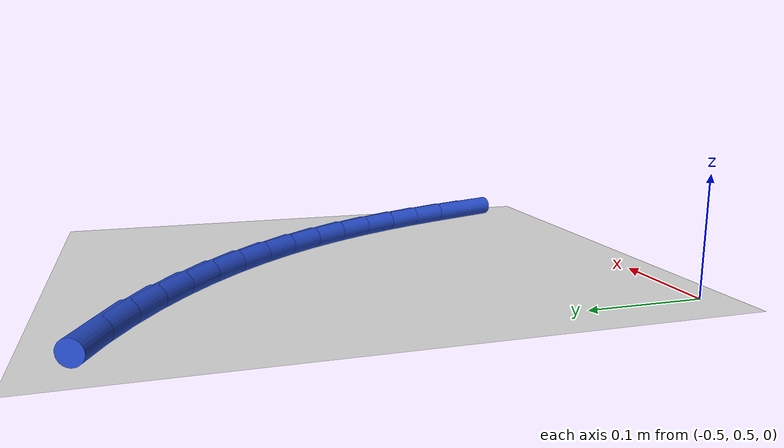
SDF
<sdf version="1.6">
 <world name="default">
  <model name="ground_plane">
   <static>1</static>
   <link name="link">
    <collision name="collision">
     <geometry><plane><normal>0 0 1</normal><size>100 100</size></plane></geometry>
     <surface><friction><ode><mu>100</mu><mu2>50</mu2></ode></friction></surface>
    </collision>
    <visual name="visual">
     <cast_shadows>0</cast_shadows>
     <geometry><plane><normal>0 0 1</normal><size>100 100</size></plane></geometry>
     <material>
      <script><uri>file://media/materials/scripts/gazebo.material</uri><name>Gazebo/WhiteGlow</name></script>
     </material>
    </visual>
   </link>
  </model>
  <model name="line">
   <link name="link_15">
    <pose>-0.12571212579413674 0.558648082354958 0.01 0 1.57 -1.1952963206039646</pose>
    <collision name="collision">
     <geometry><cylinder><radius>0.01</radius><length>0.08</length></cylinder></geometry>
    </collision>
    <visual name="visual">
     <material>
      <script><name>Gazebo/Blue</name><uri>file://media/materials/scripts/gazebo.material</uri></script>
     </material>
     <geometry><cylinder><radius>0.01</radius><length>0.08</length></cylinder></geometry>
    </visual>
   </link>
   <link name="link_16">
    <pose>-0.13972944330540882 0.594206604202918 0.01 0 1.57 -1.1577334255400793</pose>
    <collision name="collision">
     <geometry><cylinder><radius>0.01</radius><length>0.08</length></cylinder></geometry>
    </collision>
    <visual name="visual">
     <material>
      <script><name>Gazebo/Blue</name><uri>file://media/materials/scripts/gazebo.material</uri></script>
     </material>
     <geometry><cylinder><radius>0.01</radius><length>0.08</length></cylinder></geometry>
    </visual>
   </link>
   <link name="link_17">
    <pose>-0.15499986738538307 0.6290485063314891 0.01 0 1.57 -1.1147197260796398</pose>
    <collision name="collision">
     <geometry><cylinder><radius>0.01</radius><length>0.08</length></cylinder></geometry>
    </collision>
    <visual name="visual">
     <material>
      <script><name>Gazebo/Blue</name><uri>file://media/materials/scripts/gazebo.material</uri></script>
     </material>
     <geometry><cylinder><radius>0.01</radius><length>0.08</length></cylinder></geometry>
    </visual>
   </link>
   <link name="link_18">
    <pose>-0.17168430043927685 0.6630586853681615 0.01 0 1.57 -1.0662248075592544</pose>
    <collision name="collision">
     <geometry><cylinder><radius>0.01</radius><length>0.08</length></cylinder></geometry>
    </collision>
    <visual name="visual">
     <material>
      <script><name>Gazebo/Blue</name><uri>file://media/materials/scripts/gazebo.material</uri></script>
     </material>
     <geometry><cylinder><radius>0.01</radius><length>0.08</length></cylinder></geometry>
    </visual>
   </link>
   <link name="link_19">
    <pose>-0.18994364487230728 0.6961220379404246 0.01 0 1.57 -1.0123258024327875</pose>
    <collision name="collision">
     <geometry><cylinder><radius>0.01</radius><length>0.08</length></cylinder></geometry>
    </collision>
    <visual name="visual">
     <material>
      <script><name>Gazebo/Blue</name><uri>file://media/materials/scripts/gazebo.material</uri></script>
     </material>
     <geometry><cylinder><radius>0.01</radius><length>0.08</length></cylinder></geometry>
    </visual>
   </link>
   <link name="link_20">
    <pose>-0.20993880308969165 0.7281234606757686 0.01 0 1.57 -0.953249003512818</pose>
    <collision name="collision">
     <geometry><cylinder><radius>0.01</radius><length>0.08</length></cylinder></geometry>
    </collision>
    <visual name="visual">
     <material>
      <script><name>Gazebo/Blue</name><uri>file://media/materials/scripts/gazebo.material</uri></script>
     </material>
     <geometry><cylinder><radius>0.01</radius><length>0.08</length></cylinder></geometry>
    </visual>
   </link>
   <link name="link_21">
    <pose>-0.2318306774966472 0.7589478502016829 0.01 0 1.57 -0.8898010197236053</pose>
    <collision name="collision">
     <geometry><cylinder><radius>0.01</radius><length>0.08</length></cylinder></geometry>
    </collision>
    <visual name="visual">
     <material>
      <script><name>Gazebo/Blue</name><uri>file://media/materials/scripts/gazebo.material</uri></script>
     </material>
     <geometry><cylinder><radius>0.01</radius><length>0.08</length></cylinder></geometry>
    </visual>
   </link>
   <link name="link_22">
    <pose>-0.25576040202475725 0.7884794588531318 0.01 0 1.57 -0.8260626586561787</pose>
    <collision name="collision">
     <geometry><cylinder><radius>0.01</radius><length>0.08</length></cylinder></geometry>
    </collision>
    <visual name="visual">
     <material>
      <script><name>Gazebo/Blue</name><uri>file://media/materials/scripts/gazebo.material</uri></script>
     </material>
     <geometry><cylinder><radius>0.01</radius><length>0.08</length></cylinder></geometry>
    </visual>
   </link>
   <link name="link_23">
    <pose>-0.28167875084354826 0.8165963347747986 0.01 0 1.57 -0.7637797927869033</pose>
    <collision name="collision">
     <geometry><cylinder><radius>0.01</radius><length>0.08</length></cylinder></geometry>
    </collision>
    <visual name="visual">
     <material>
      <script><name>Gazebo/Blue</name><uri>file://media/materials/scripts/gazebo.material</uri></script>
     </material>
     <geometry><cylinder><radius>0.01</radius><length>0.08</length></cylinder></geometry>
    </visual>
   </link>
   <link name="link_24">
    <pose>-0.30943014430683297 0.8431730598362355 0.01 0 1.57 -0.702469948848878</pose>
    <collision name="collision">
     <geometry><cylinder><radius>0.01</radius><length>0.08</length></cylinder></geometry>
    </collision>
    <visual name="visual">
     <material>
      <script><name>Gazebo/Blue</name><uri>file://media/materials/scripts/gazebo.material</uri></script>
     </material>
     <geometry><cylinder><radius>0.01</radius><length>0.08</length></cylinder></geometry>
    </visual>
   </link>
   <link name="link_25">
    <pose>-0.3388578419103098 0.8680841780723975 0.01 0 1.57 -0.6416291802982655</pose>
    <collision name="collision">
     <geometry><cylinder><radius>0.01</radius><length>0.08</length></cylinder></geometry>
    </collision>
    <visual name="visual">
     <material>
      <script><name>Gazebo/Blue</name><uri>file://media/materials/scripts/gazebo.material</uri></script>
     </material>
     <geometry><cylinder><radius>0.01</radius><length>0.08</length></cylinder></geometry>
    </visual>
   </link>
   <link name="link_26">
    <pose>-0.36980510314967685 0.8912042335182397 0.01 0 1.57 -0.5807573015856039</pose>
    <collision name="collision">
     <geometry><cylinder><radius>0.01</radius><length>0.08</length></cylinder></geometry>
    </collision>
    <visual name="visual">
     <material>
      <script><name>Gazebo/Blue</name><uri>file://media/materials/scripts/gazebo.material</uri></script>
     </material>
     <geometry><cylinder><radius>0.01</radius><length>0.08</length></cylinder></geometry>
    </visual>
   </link>
   <link name="link_27">
    <pose>-0.4021151875206324 0.9124077702087185 0.01 0 1.57 -0.5193590099628549</pose>
    <collision name="collision">
     <geometry><cylinder><radius>0.01</radius><length>0.08</length></cylinder></geometry>
    </collision>
    <visual name="visual">
     <material>
      <script><name>Gazebo/Blue</name><uri>file://media/materials/scripts/gazebo.material</uri></script>
     </material>
     <geometry><cylinder><radius>0.01</radius><length>0.08</length></cylinder></geometry>
    </visual>
   </link>
   <link name="link_28">
    <pose>-0.43563135451887486 0.9315693321787886 0.01 0 1.57 -0.45694529368833253</pose>
    <collision name="collision">
     <geometry><cylinder><radius>0.01</radius><length>0.08</length></cylinder></geometry>
    </collision>
    <visual name="visual">
     <material>
      <script><name>Gazebo/Blue</name><uri>file://media/materials/scripts/gazebo.material</uri></script>
     </material>
     <geometry><cylinder><radius>0.01</radius><length>0.08</length></cylinder></geometry>
    </visual>
   </link>
   <link name="link_29">
    <pose>-0.4701968636401025 0.9485634634634056 0.01 0 1.57 -0.39303638831993953</pose>
    <collision name="collision">
     <geometry><cylinder><radius>0.01</radius><length>0.08</length></cylinder></geometry>
    </collision>
    <visual name="visual">
     <material>
      <script><name>Gazebo/Blue</name><uri>file://media/materials/scripts/gazebo.material</uri></script>
     </material>
     <geometry><cylinder><radius>0.01</radius><length>0.08</length></cylinder></geometry>
    </visual>
   </link>
  </model>
 </world>
</sdf>
